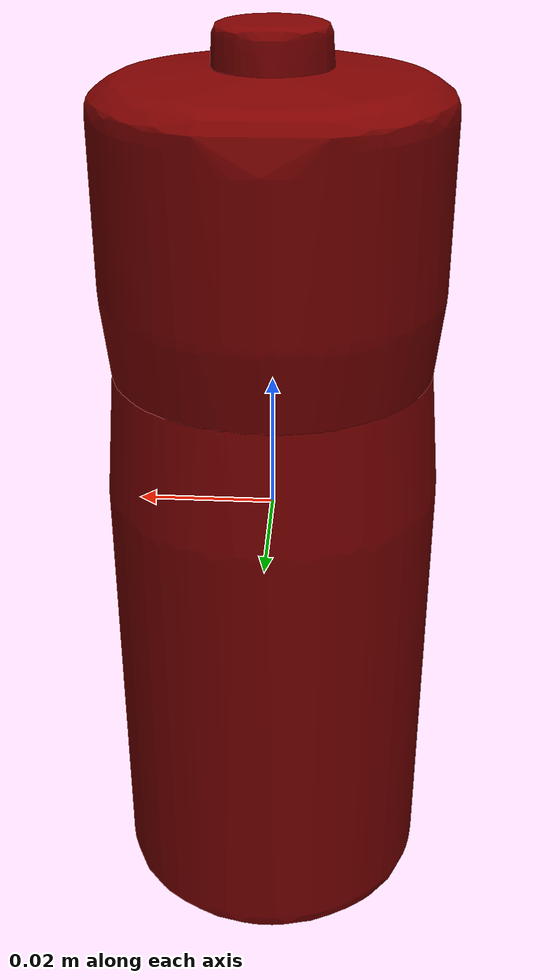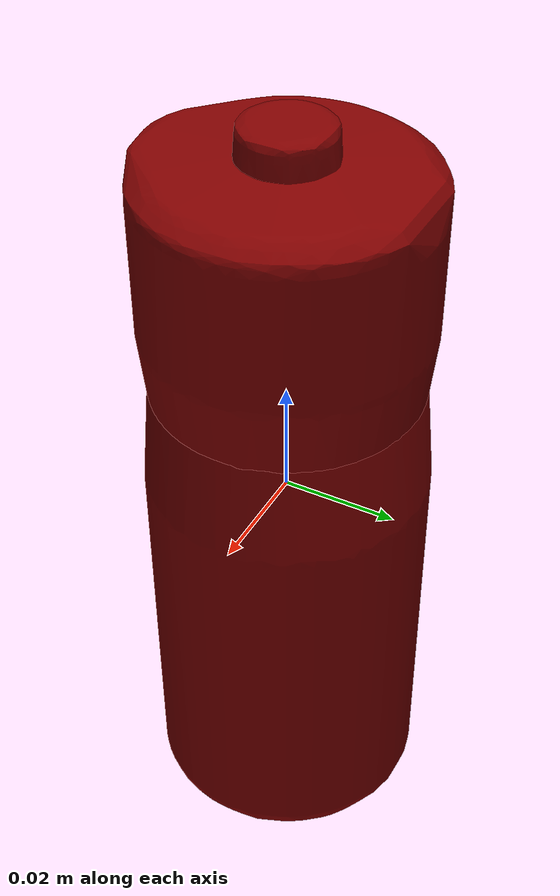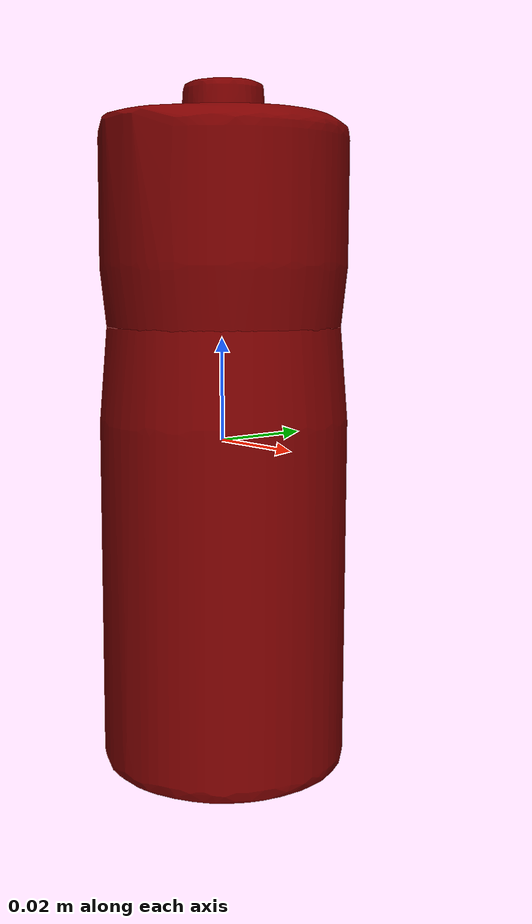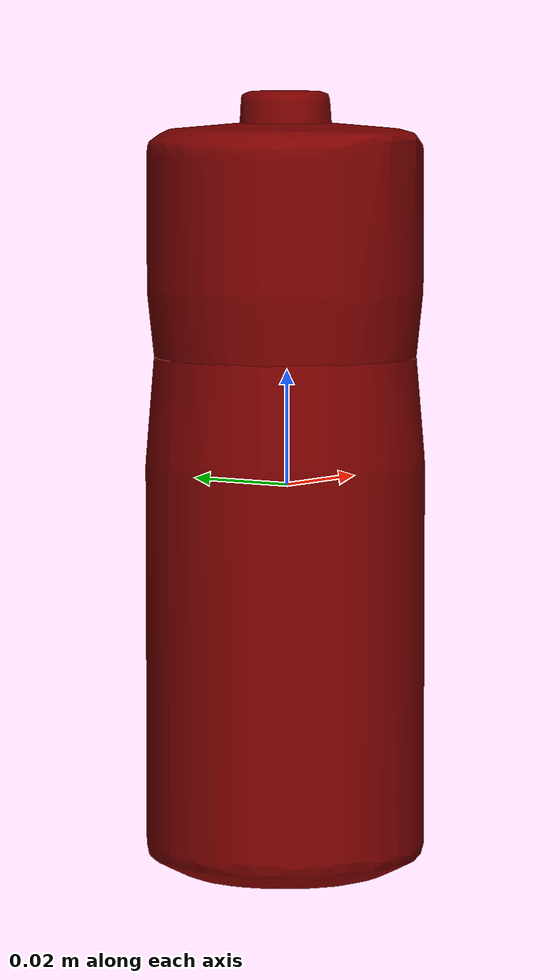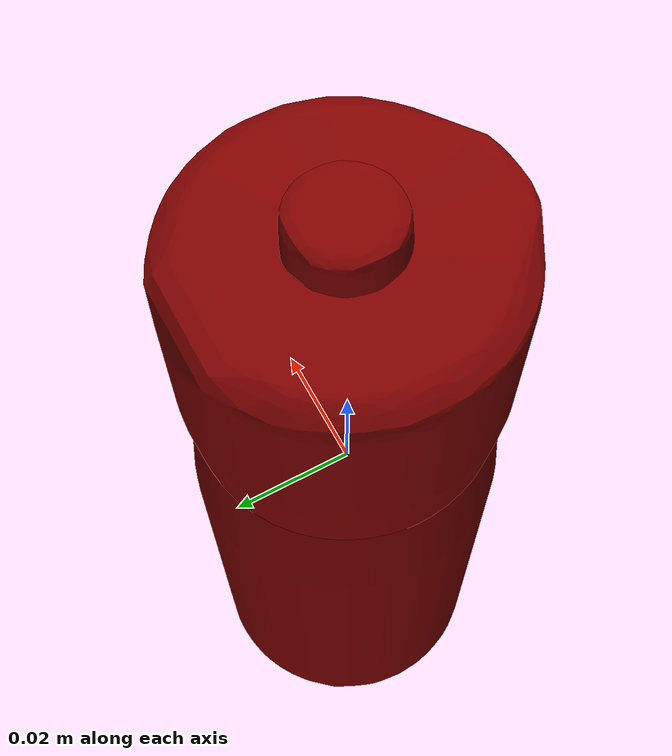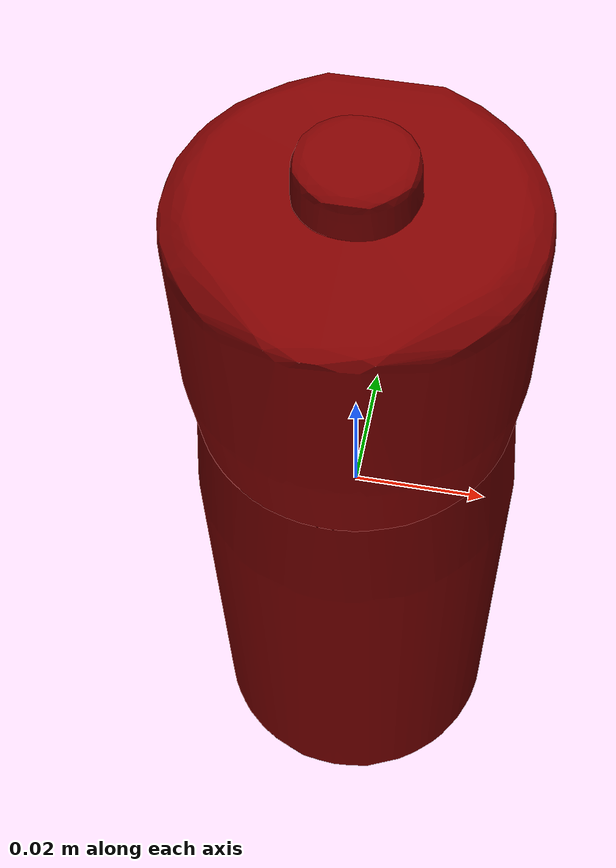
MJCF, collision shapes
<?xml version='1.0' encoding='utf-8'?>
<mujoco model="water_bottle_13">
  <asset>
    <mesh file="visual/model_normalized_0.obj" name="model_normalized_0_vis" scale="0.135 0.135 0.135" refquat="1.0 0.0 0.0 0.0" />
    <texture type="2d" name="image0" file="visual/image0.png" />
    <material name="blinn1SG.002" texture="image0" specular="0.5" shininess="0.25" />
    <mesh file="collision/collision_mesh_collision_0.obj" name="water_collision_mesh_0" scale="0.135 0.135 0.135" refquat="1.0 0.0 0.0 0.0" />
    <mesh file="collision/collision_mesh_collision_1.obj" name="water_collision_mesh_1" scale="0.135 0.135 0.135" refquat="1.0 0.0 0.0 0.0" />
    <mesh file="collision/collision_mesh_collision_2.obj" name="water_collision_mesh_2" scale="0.135 0.135 0.135" refquat="1.0 0.0 0.0 0.0" />
    </asset>
  <default>
    <default class="region">
      <geom group="1" conaffinity="0" contype="0" rgba="0 1 0 0" />
      </default>
    <default class="collision">
      <geom group="0" rgba="0.5 0 0 0.5" density="1000.0" />
      </default>
    </default>
  <worldbody>
    <body>
      <body name="object">
        <geom solimp="0.998 0.998 0.001" solref="0.001 1" density="100" friction="0.95 0.3 0.1" type="mesh" mesh="model_normalized_0_vis" conaffinity="0" contype="0" group="1" material="blinn1SG.002" />
        <geom class="region" name="reg_bbox" type="box" pos="-5.049000000002802e-07 9.574470000000141e-05 6.075000003047393e-09" size="0.0234564066 0.02379164535 0.067499995275" />
        <geom mesh="water_collision_mesh_0" type="mesh" class="collision" />
        <geom mesh="water_collision_mesh_1" type="mesh" class="collision" />
        <geom mesh="water_collision_mesh_2" type="mesh" class="collision" />
        </body>
      </body>
    </worldbody>
  </mujoco>
